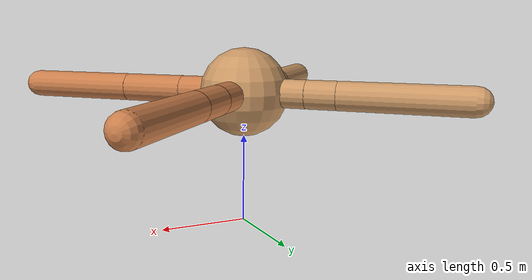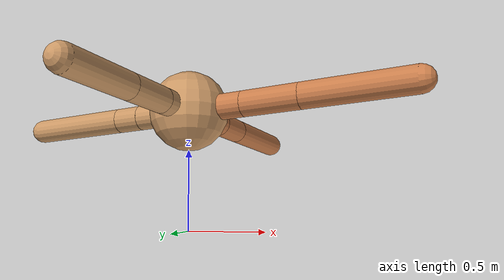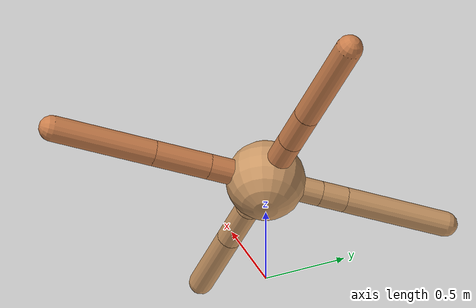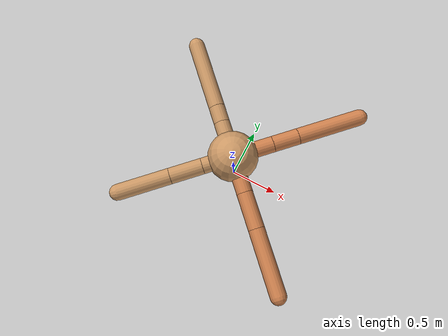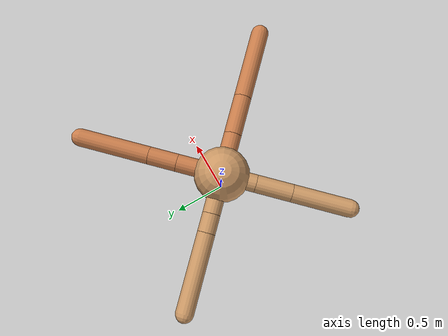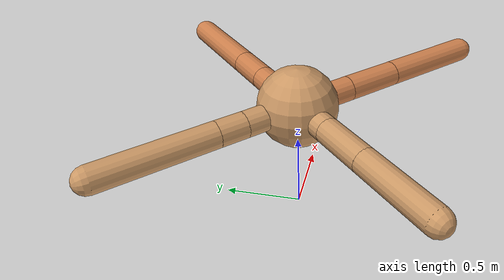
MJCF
<mujoco model="ant">
  <compiler angle="degree" coordinate="local" inertiafromgeom="true" />
  <option integrator="RK4" timestep="0.01" />
  <custom>
    <numeric data="0.0 0.0 0.55 1.0 0.0 0.0 0.0 0.0 1.0 0.0 -1.0 0.0 -1.0 0.0 1.0" name="init_qpos" />
  </custom>
  <default>
    <joint armature="1" damping="1" limited="true" />
    <geom conaffinity="0" condim="3" density="5.0" friction="1.5 0.1 0.1" margin="0.01" rgba="0.8 0.6 0.4 1" />
  </default>
  <worldbody>
    <body name="torso" pos="0 0 0.75">
      <geom name="torso_geom" pos="0 0 0" size="0.25" type="sphere" />

      <body name="front_left_leg" pos="0 0 0">
        <geom fromto="0.0 0.0 0.0 0.29153700434234936 0.29153700434234936 0.0" name="aux_1_geom" size="0.08" type="capsule" rgba=".8 .5 .3 1" />
        <body name="aux_1" pos="0.29153700434234936 0.29153700434234936 0.0">
          <joint axis="0 0 1" name="hip_1" pos="0.0 0.0 0.0" range="-40 40" type="hinge" />
          <geom fromto="0.0 0.0 0.0 0.18310821738448999 0.18310821738448999 0.0" name="left_leg_geom" size="0.08" type="capsule" rgba=".8 .5 .3 1" />
          <body pos="0.18310821738448999 0.18310821738448999 0.0" name="front_left_foot">
            <joint axis="-1 1 0" name="ankle_1" pos="0.0 0.0 0.0" range="30 100" type="hinge" />
            <geom fromto="0.0 0.0 0.0 0.4537377532772519 0.4537377532772519 0.0" name="left_ankle_geom" size="0.08" type="capsule" rgba=".8 .5 .3 1" />
          </body>
        </body>
      </body>
      <body name="front_right_leg" pos="0 0 0">
        <geom fromto="0.0 0.0 0.0 -0.2545137803223168 0.2545137803223168 0.0" name="aux_2_geom" size="0.08" type="capsule" />
        <body name="aux_2" pos="-0.2545137803223168 0.2545137803223168 0.0">
          <joint axis="0 0 1" name="hip_2" pos="0.0 0.0 0.0" range="-40 40" type="hinge" />
          <geom fromto="0.0 0.0 0.0 -0.12083501615739073 0.12083501615739073 0.0" name="right_leg_geom" size="0.08" type="capsule" />
          <body pos="-0.12083501615739073 0.12083501615739073 0.0" name="front_right_foot">
            <joint axis="1 1 0" name="ankle_2" pos="0.0 0.0 0.0" range="-100 -30" type="hinge" />
            <geom fromto="0.0 0.0 0.0 -0.4921625959738867 0.4921625959738867 0.0" name="right_ankle_geom" size="0.08" type="capsule" />
          </body>
        </body>
      </body>
      <body name="left_back_leg" pos="0 0 0">
        <geom fromto="0.0 0.0 0.0 -0.21924296619106684 -0.21924296619106684 0.0" name="aux_3_geom" size="0.08" type="capsule" />
        <body name="aux_3" pos="-0.21924296619106684 -0.21924296619106684 0.0">
          <joint axis="0 0 1" name="hip_3" pos="0.0 0.0 0.0" range="-40 40" type="hinge" />
          <geom fromto="0.0 0.0 0.0 -0.2302777872010247 -0.2302777872010247 0.0" name="back_leg_geom" size="0.08" type="capsule" />
          <body pos="-0.2302777872010247 -0.2302777872010247 0.0" name="left_back_foot">
            <joint axis="-1 1 0" name="ankle_3" pos="0.0 0.0 0.0" range="-100 -30" type="hinge" />
            <geom fromto="0.0 0.0 0.0 -0.3679906862082698 -0.3679906862082698 0.0" name="third_ankle_geom" size="0.08" type="capsule" />
          </body>
        </body>
      </body>
      <body name="right_back_leg" pos="0 0 0">
        <geom fromto="0.0 0.0 0.0 0.2676488583203211 -0.2676488583203211 0.0" name="aux_4_geom" size="0.08" type="capsule" rgba=".8 .5 .3 1" />
        <body name="aux_4" pos="0.2676488583203211 -0.2676488583203211 0.0">
          <joint axis="0 0 1" name="hip_4" pos="0.0 0.0 0.0" range="-40 40" type="hinge" />
          <geom fromto="0.0 0.0 0.0 0.2542578959400397 -0.2542578959400397 0.0" name="rightback_leg_geom" size="0.08" type="capsule" rgba=".8 .5 .3 1" />
          <body pos="0.2542578959400397 -0.2542578959400397 0.0" name="right_back_foot">
            <joint axis="1 1 0" name="ankle_4" pos="0.0 0.0 0.0" range="30 100" type="hinge" />
            <geom fromto="0.0 0.0 0.0 0.4580667016409663 -0.4580667016409663 0.0" name="fourth_ankle_geom" size="0.08" type="capsule" rgba=".8 .5 .3 1" />
          </body>
        </body>
      </body>
    </body>
  </worldbody>
  <actuator>
    <motor ctrllimited="true" ctrlrange="-1.0 1.0" joint="hip_4" gear="150" />
    <motor ctrllimited="true" ctrlrange="-1.0 1.0" joint="ankle_4" gear="150" />
    <motor ctrllimited="true" ctrlrange="-1.0 1.0" joint="hip_1" gear="150" />
    <motor ctrllimited="true" ctrlrange="-1.0 1.0" joint="ankle_1" gear="150" />
    <motor ctrllimited="true" ctrlrange="-1.0 1.0" joint="hip_2" gear="150" />
    <motor ctrllimited="true" ctrlrange="-1.0 1.0" joint="ankle_2" gear="150" />
    <motor ctrllimited="true" ctrlrange="-1.0 1.0" joint="hip_3" gear="150" />
    <motor ctrllimited="true" ctrlrange="-1.0 1.0" joint="ankle_3" gear="150" />
  </actuator>
</mujoco>
